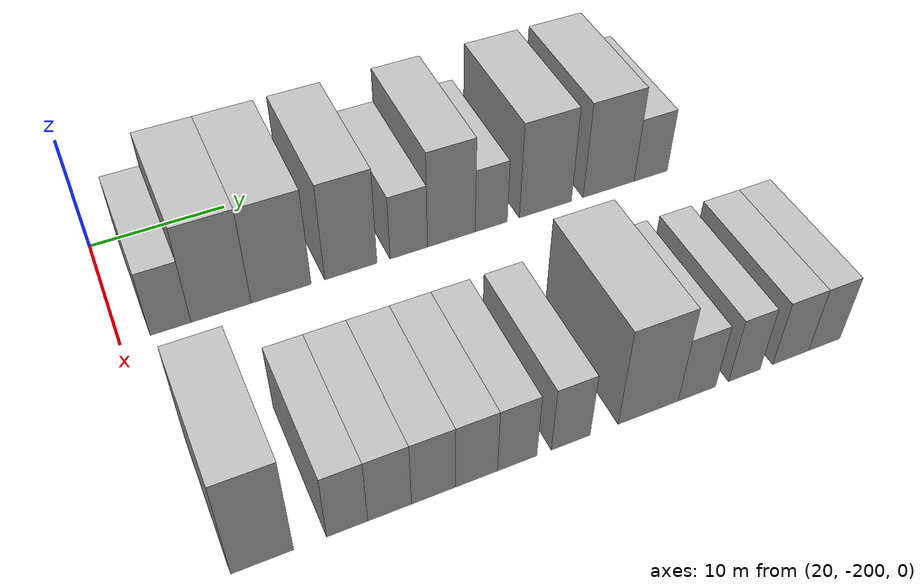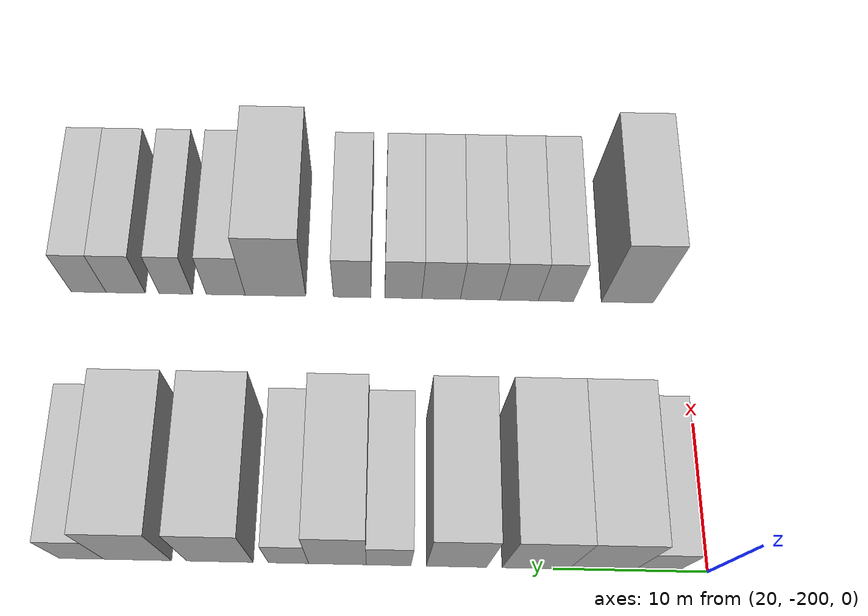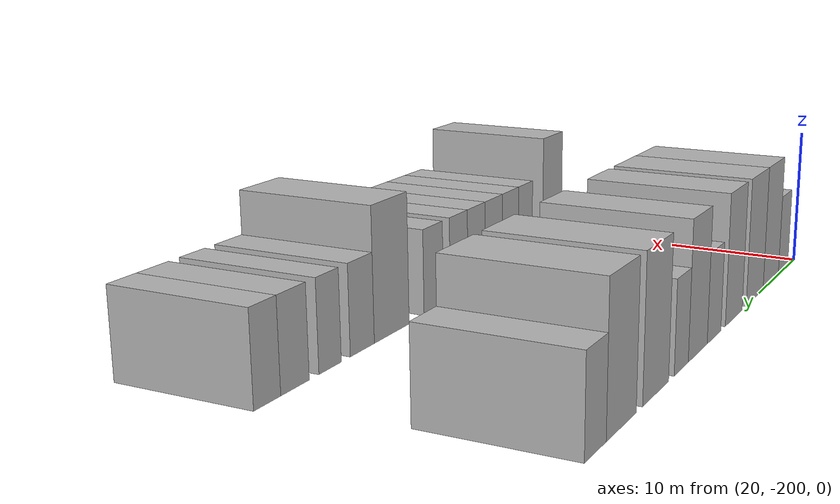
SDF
<sdf version="1.6">
 <world name="default">
  <model name="building_1">
   <static>1</static>
   <pose>25.0000 -196.6038 0 0.000000 0.000000 0.000000</pose>
   <link name="link">
    <pose>0 0 3.00 0 0 0</pose>
    <collision name="collision"><geometry><box><size>10.0000 2.7924 6.0000</size></box></geometry></collision>
    <visual name="visual">
     <cast_shadows>0</cast_shadows>
     <geometry><box><size>10.0000 2.7924 6.0000</size></box></geometry>
     <material>
      <script>
       <uri>model://HANNAS_wall/materials/scripts</uri>
       <uri>model://HANNAS_wall/materials/textures</uri>
       <name>vrc/HANNAS_wall</name>
      </script>
     </material>
    </visual>
   </link>
  </model>
  <model name="building_2">
   <static>1</static>
   <pose>25.0000 -193.0920 0 0.000000 0.000000 0.000000</pose>
   <link name="link">
    <pose>0 0 4.50 0 0 0</pose>
    <collision name="collision"><geometry><box><size>10.0000 4.2312 9.0000</size></box></geometry></collision>
    <visual name="visual">
     <cast_shadows>0</cast_shadows>
     <geometry><box><size>10.0000 4.2312 9.0000</size></box></geometry>
     <material>
      <script>
       <uri>model://HANNAS_wall/materials/scripts</uri>
       <uri>model://HANNAS_wall/materials/textures</uri>
       <name>vrc/HANNAS_wall</name>
      </script>
     </material>
    </visual>
   </link>
  </model>
  <model name="building_3">
   <static>1</static>
   <pose>25.0000 -188.8017 0 0.000000 0.000000 0.000000</pose>
   <link name="link">
    <pose>0 0 4.50 0 0 0</pose>
    <collision name="collision"><geometry><box><size>10.0000 4.3494 9.0000</size></box></geometry></collision>
    <visual name="visual">
     <cast_shadows>0</cast_shadows>
     <geometry><box><size>10.0000 4.3494 9.0000</size></box></geometry>
     <material>
      <script>
       <uri>model://HANNAS_wall/materials/scripts</uri>
       <uri>model://HANNAS_wall/materials/textures</uri>
       <name>vrc/HANNAS_wall</name>
      </script>
     </material>
    </visual>
   </link>
  </model>
  <model name="building_4">
   <static>1</static>
   <pose>25.0000 -183.6629 0 0.000000 0.000000 0.000000</pose>
   <link name="link">
    <pose>0 0 4.50 0 0 0</pose>
    <collision name="collision"><geometry><box><size>10.0000 3.9281 9.0000</size></box></geometry></collision>
    <visual name="visual">
     <cast_shadows>0</cast_shadows>
     <geometry><box><size>10.0000 3.9281 9.0000</size></box></geometry>
     <material>
      <script>
       <uri>model://HANNAS_wall/materials/scripts</uri>
       <uri>model://HANNAS_wall/materials/textures</uri>
       <name>vrc/HANNAS_wall</name>
      </script>
     </material>
    </visual>
   </link>
  </model>
  <model name="building_5">
   <static>1</static>
   <pose>25.0000 -179.2473 0 0.000000 0.000000 0.000000</pose>
   <link name="link">
    <pose>0 0 3.00 0 0 0</pose>
    <collision name="collision"><geometry><box><size>10.0000 2.9031 6.0000</size></box></geometry></collision>
    <visual name="visual">
     <cast_shadows>0</cast_shadows>
     <geometry><box><size>10.0000 2.9031 6.0000</size></box></geometry>
     <material>
      <script>
       <uri>model://HANNAS_wall/materials/scripts</uri>
       <uri>model://HANNAS_wall/materials/textures</uri>
       <name>vrc/HANNAS_wall</name>
      </script>
     </material>
    </visual>
   </link>
  </model>
  <model name="building_6">
   <static>1</static>
   <pose>25.0000 -175.9165 0 0.000000 0.000000 0.000000</pose>
   <link name="link">
    <pose>0 0 4.50 0 0 0</pose>
    <collision name="collision"><geometry><box><size>10.0000 3.7585 9.0000</size></box></geometry></collision>
    <visual name="visual">
     <cast_shadows>0</cast_shadows>
     <geometry><box><size>10.0000 3.7585 9.0000</size></box></geometry>
     <material>
      <script>
       <uri>model://HANNAS_wall/materials/scripts</uri>
       <uri>model://HANNAS_wall/materials/textures</uri>
       <name>vrc/HANNAS_wall</name>
      </script>
     </material>
    </visual>
   </link>
  </model>
  <model name="building_7">
   <static>1</static>
   <pose>25.0000 -172.7291 0 0.000000 0.000000 0.000000</pose>
   <link name="link">
    <pose>0 0 3.00 0 0 0</pose>
    <collision name="collision"><geometry><box><size>10.0000 2.6163 6.0000</size></box></geometry></collision>
    <visual name="visual">
     <cast_shadows>0</cast_shadows>
     <geometry><box><size>10.0000 2.6163 6.0000</size></box></geometry>
     <material>
      <script>
       <uri>model://HANNAS_wall/materials/scripts</uri>
       <uri>model://HANNAS_wall/materials/textures</uri>
       <name>vrc/HANNAS_wall</name>
      </script>
     </material>
    </visual>
   </link>
  </model>
  <model name="building_8">
   <static>1</static>
   <pose>25.0000 -168.2506 0 0.000000 0.000000 0.000000</pose>
   <link name="link">
    <pose>0 0 4.50 0 0 0</pose>
    <collision name="collision"><geometry><box><size>10.0000 4.3406 9.0000</size></box></geometry></collision>
    <visual name="visual">
     <cast_shadows>0</cast_shadows>
     <geometry><box><size>10.0000 4.3406 9.0000</size></box></geometry>
     <material>
      <script>
       <uri>model://HANNAS_wall/materials/scripts</uri>
       <uri>model://HANNAS_wall/materials/textures</uri>
       <name>vrc/HANNAS_wall</name>
      </script>
     </material>
    </visual>
   </link>
  </model>
  <model name="building_9">
   <static>1</static>
   <pose>25.0000 -162.8750 0 0.000000 0.000000 0.000000</pose>
   <link name="link">
    <pose>0 0 4.50 0 0 0</pose>
    <collision name="collision"><geometry><box><size>10.0000 4.4108 9.0000</size></box></geometry></collision>
    <visual name="visual">
     <cast_shadows>0</cast_shadows>
     <geometry><box><size>10.0000 4.4108 9.0000</size></box></geometry>
     <material>
      <script>
       <uri>model://HANNAS_wall/materials/scripts</uri>
       <uri>model://HANNAS_wall/materials/textures</uri>
       <name>vrc/HANNAS_wall</name>
      </script>
     </material>
    </visual>
   </link>
  </model>
  <model name="building_10">
   <static>1</static>
   <pose>25.0000 -159.2041 0 0.000000 0.000000 0.000000</pose>
   <link name="link">
    <pose>0 0 3.00 0 0 0</pose>
    <collision name="collision"><geometry><box><size>10.0000 2.9310 6.0000</size></box></geometry></collision>
    <visual name="visual">
     <cast_shadows>0</cast_shadows>
     <geometry><box><size>10.0000 2.9310 6.0000</size></box></geometry>
     <material>
      <script>
       <uri>model://HANNAS_wall/materials/scripts</uri>
       <uri>model://HANNAS_wall/materials/textures</uri>
       <name>vrc/HANNAS_wall</name>
      </script>
     </material>
    </visual>
   </link>
  </model>
  <model name="building_88">
   <static>1</static>
   <pose>44.0000 -196.1386 0 0.000000 0.000000 0.000000</pose>
   <link name="link">
    <pose>0 0 4.50 0 0 0</pose>
    <collision name="collision"><geometry><box><size>10.0000 3.7229 9.0000</size></box></geometry></collision>
    <visual name="visual">
     <cast_shadows>0</cast_shadows>
     <geometry><box><size>10.0000 3.7229 9.0000</size></box></geometry>
     <material>
      <script>
       <uri>model://HANNAS_wall/materials/scripts</uri>
       <uri>model://HANNAS_wall/materials/textures</uri>
       <name>vrc/HANNAS_wall</name>
      </script>
     </material>
    </visual>
   </link>
  </model>
  <model name="building_89">
   <static>1</static>
   <pose>44.0000 -191.0056 0 0.000000 0.000000 0.000000</pose>
   <link name="link">
    <pose>0 0 3.00 0 0 0</pose>
    <collision name="collision"><geometry><box><size>10.0000 2.5429 6.0000</size></box></geometry></collision>
    <visual name="visual">
     <cast_shadows>0</cast_shadows>
     <geometry><box><size>10.0000 2.5429 6.0000</size></box></geometry>
     <material>
      <script>
       <uri>model://HANNAS_wall/materials/scripts</uri>
       <uri>model://HANNAS_wall/materials/textures</uri>
       <name>vrc/HANNAS_wall</name>
      </script>
     </material>
    </visual>
   </link>
  </model>
  <model name="building_90">
   <static>1</static>
   <pose>44.0000 -188.3514 0 0.000000 0.000000 0.000000</pose>
   <link name="link">
    <pose>0 0 3.00 0 0 0</pose>
    <collision name="collision"><geometry><box><size>10.0000 2.7656 6.0000</size></box></geometry></collision>
    <visual name="visual">
     <cast_shadows>0</cast_shadows>
     <geometry><box><size>10.0000 2.7656 6.0000</size></box></geometry>
     <material>
      <script>
       <uri>model://HANNAS_wall/materials/scripts</uri>
       <uri>model://HANNAS_wall/materials/textures</uri>
       <name>vrc/HANNAS_wall</name>
      </script>
     </material>
    </visual>
   </link>
  </model>
  <model name="building_91">
   <static>1</static>
   <pose>44.0000 -185.5450 0 0.000000 0.000000 0.000000</pose>
   <link name="link">
    <pose>0 0 3.00 0 0 0</pose>
    <collision name="collision"><geometry><box><size>10.0000 2.8471 6.0000</size></box></geometry></collision>
    <visual name="visual">
     <cast_shadows>0</cast_shadows>
     <geometry><box><size>10.0000 2.8471 6.0000</size></box></geometry>
     <material>
      <script>
       <uri>model://HANNAS_wall/materials/scripts</uri>
       <uri>model://HANNAS_wall/materials/textures</uri>
       <name>vrc/HANNAS_wall</name>
      </script>
     </material>
    </visual>
   </link>
  </model>
  <model name="building_92">
   <static>1</static>
   <pose>44.0000 -182.7298 0 0.000000 0.000000 0.000000</pose>
   <link name="link">
    <pose>0 0 3.00 0 0 0</pose>
    <collision name="collision"><geometry><box><size>10.0000 2.7833 6.0000</size></box></geometry></collision>
    <visual name="visual">
     <cast_shadows>0</cast_shadows>
     <geometry><box><size>10.0000 2.7833 6.0000</size></box></geometry>
     <material>
      <script>
       <uri>model://HANNAS_wall/materials/scripts</uri>
       <uri>model://HANNAS_wall/materials/textures</uri>
       <name>vrc/HANNAS_wall</name>
      </script>
     </material>
    </visual>
   </link>
  </model>
  <model name="building_93">
   <static>1</static>
   <pose>44.0000 -180.0049 0 0.000000 0.000000 0.000000</pose>
   <link name="link">
    <pose>0 0 3.00 0 0 0</pose>
    <collision name="collision"><geometry><box><size>10.0000 2.6665 6.0000</size></box></geometry></collision>
    <visual name="visual">
     <cast_shadows>0</cast_shadows>
     <geometry><box><size>10.0000 2.6665 6.0000</size></box></geometry>
     <material>
      <script>
       <uri>model://HANNAS_wall/materials/scripts</uri>
       <uri>model://HANNAS_wall/materials/textures</uri>
       <name>vrc/HANNAS_wall</name>
      </script>
     </material>
    </visual>
   </link>
  </model>
  <model name="building_94">
   <static>1</static>
   <pose>44.0000 -176.3206 0 0.000000 0.000000 0.000000</pose>
   <link name="link">
    <pose>0 0 3.00 0 0 0</pose>
    <collision name="collision"><geometry><box><size>10.0000 2.7021 6.0000</size></box></geometry></collision>
    <visual name="visual">
     <cast_shadows>0</cast_shadows>
     <geometry><box><size>10.0000 2.7021 6.0000</size></box></geometry>
     <material>
      <script>
       <uri>model://HANNAS_wall/materials/scripts</uri>
       <uri>model://HANNAS_wall/materials/textures</uri>
       <name>vrc/HANNAS_wall</name>
      </script>
     </material>
    </visual>
   </link>
  </model>
  <model name="building_95">
   <static>1</static>
   <pose>44.0000 -170.7812 0 0.000000 0.000000 0.000000</pose>
   <link name="link">
    <pose>0 0 4.50 0 0 0</pose>
    <collision name="collision"><geometry><box><size>10.0000 4.3767 9.0000</size></box></geometry></collision>
    <visual name="visual">
     <cast_shadows>0</cast_shadows>
     <geometry><box><size>10.0000 4.3767 9.0000</size></box></geometry>
     <material>
      <script>
       <uri>model://HANNAS_wall/materials/scripts</uri>
       <uri>model://HANNAS_wall/materials/textures</uri>
       <name>vrc/HANNAS_wall</name>
      </script>
     </material>
    </visual>
   </link>
  </model>
  <model name="building_96">
   <static>1</static>
   <pose>44.0000 -167.1882 0 0.000000 0.000000 0.000000</pose>
   <link name="link">
    <pose>0 0 3.00 0 0 0</pose>
    <collision name="collision"><geometry><box><size>10.0000 2.8095 6.0000</size></box></geometry></collision>
    <visual name="visual">
     <cast_shadows>0</cast_shadows>
     <geometry><box><size>10.0000 2.8095 6.0000</size></box></geometry>
     <material>
      <script>
       <uri>model://HANNAS_wall/materials/scripts</uri>
       <uri>model://HANNAS_wall/materials/textures</uri>
       <name>vrc/HANNAS_wall</name>
      </script>
     </material>
    </visual>
   </link>
  </model>
  <model name="building_97">
   <static>1</static>
   <pose>44.0000 -163.5733 0 0.000000 0.000000 0.000000</pose>
   <link name="link">
    <pose>0 0 3.00 0 0 0</pose>
    <collision name="collision"><geometry><box><size>10.0000 2.4204 6.0000</size></box></geometry></collision>
    <visual name="visual">
     <cast_shadows>0</cast_shadows>
     <geometry><box><size>10.0000 2.4204 6.0000</size></box></geometry>
     <material>
      <script>
       <uri>model://HANNAS_wall/materials/scripts</uri>
       <uri>model://HANNAS_wall/materials/textures</uri>
       <name>vrc/HANNAS_wall</name>
      </script>
     </material>
    </visual>
   </link>
  </model>
  <model name="building_98">
   <static>1</static>
   <pose>44.0000 -159.9438 0 0.000000 0.000000 0.000000</pose>
   <link name="link">
    <pose>0 0 3.00 0 0 0</pose>
    <collision name="collision"><geometry><box><size>10.0000 2.8386 6.0000</size></box></geometry></collision>
    <visual name="visual">
     <cast_shadows>0</cast_shadows>
     <geometry><box><size>10.0000 2.8386 6.0000</size></box></geometry>
     <material>
      <script>
       <uri>model://HANNAS_wall/materials/scripts</uri>
       <uri>model://HANNAS_wall/materials/textures</uri>
       <name>vrc/HANNAS_wall</name>
      </script>
     </material>
    </visual>
   </link>
  </model>
  <model name="building_99">
   <static>1</static>
   <pose>44.0000 -157.2572 0 0.000000 0.000000 0.000000</pose>
   <link name="link">
    <pose>0 0 3.00 0 0 0</pose>
    <collision name="collision"><geometry><box><size>10.0000 2.5347 6.0000</size></box></geometry></collision>
    <visual name="visual">
     <cast_shadows>0</cast_shadows>
     <geometry><box><size>10.0000 2.5347 6.0000</size></box></geometry>
     <material>
      <script>
       <uri>model://HANNAS_wall/materials/scripts</uri>
       <uri>model://HANNAS_wall/materials/textures</uri>
       <name>vrc/HANNAS_wall</name>
      </script>
     </material>
    </visual>
   </link>
  </model>
 </world>
</sdf>
